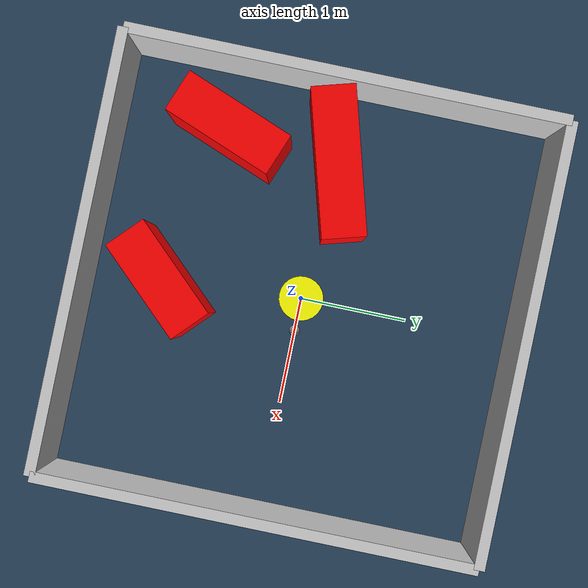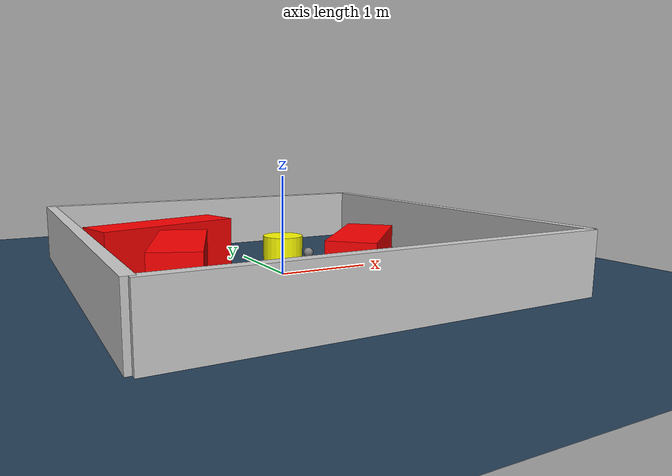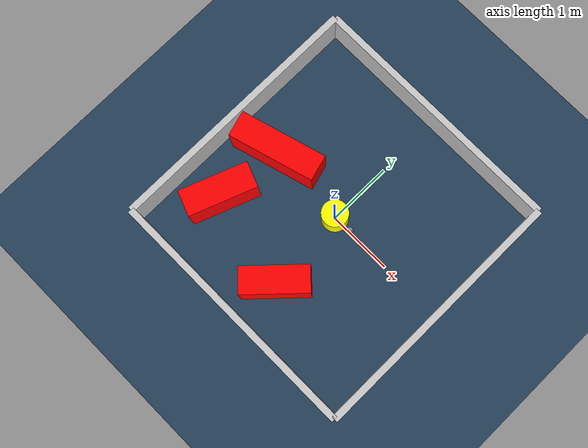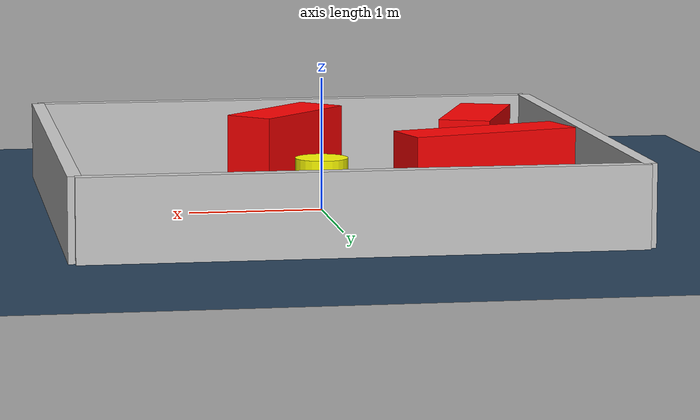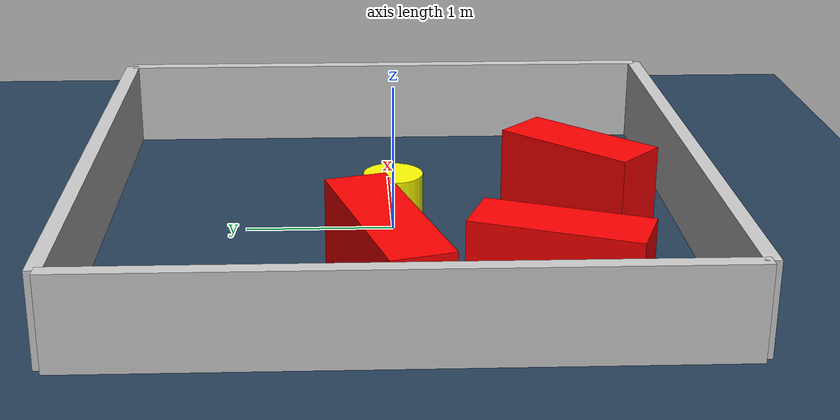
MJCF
<?xml version="1.0" ?>
<mujoco model="generated_environment">
  <option timestep="0.01" integrator="RK4" cone="elliptic"/>
  <default>
    <geom density="1"/>
  </default>
  <asset>
    <texture builtin="gradient" height="3072" rgb1="0.3 0.5 0.7" rgb2="0 0 0" type="skybox" width="512"/>
    <texture builtin="checker" height="300" mark="edge" markrgb="0.8 0.8 0.8" name="groundplane" rgb1="0.2 0.3 0.4" rgb2="0.1 0.2 0.3" type="2d" width="300"/>
    <material name="groundplane" reflectance="0.2" texrepeat="5 5" texture="groundplane" texuniform="true"/>
    <material name="robot" rgba="0.0 1.0 0.0 1"/>
  </asset>
  <worldbody>
    <light dir="0 0 -1" directional="true" pos="0 0 1.5"/>
    <geom condim="4" friction="1.0 0.005 0.001" material="groundplane" name="floor" size="0 0 0.05" type="plane"/>
    <body name="walls">
      <geom name="wall_1" condim="4" pos="-2.0 0.0 0.3" rgba="0.800000011920929 0.800000011920929 0.800000011920929 1.0" size="0.05 2.0 0.3" type="box"/>
      <geom name="wall_2" condim="4" pos="2.0 0.0 0.3" rgba="0.800000011920929 0.800000011920929 0.800000011920929 1.0" size="0.05 2.0 0.3" type="box"/>
      <geom name="wall_3" condim="4" pos="0.0 -2.0 0.3" rgba="0.800000011920929 0.800000011920929 0.800000011920929 1.0" size="2.0 0.05 0.3" type="box"/>
      <geom name="wall_4" condim="4" pos="0.0 2.0 0.3" rgba="0.800000011920929 0.800000011920929 0.800000011920929 1.0" size="2.0 0.05 0.3" type="box"/>
    </body>
    <body name="robot">
      <joint name="joint_x" type="slide" pos="0 0 0" axis="1 0 0"/>
      <joint name="joint_y" type="slide" pos="0 0 0" axis="0 1 0"/>
      <geom name="robot" type="sphere" pos="0.3 0.0 0.2" size="0.05" mass="5." friction="1.0 0.005 0.0001" condim="4" rgba="0.5 0.5 0.5 1.0"/>
      <site name="sensor_ball"/>
    </body>
    <body name="obstacle_movable_1">
      <geom name="obstacle_movable_1" condim="4" pos="0.0 0.0 0.2" euler="0 0 0.0" friction="1.0 0.005 0.001" rgba="1.0 1.0 0.0 1.0" size="0.2 0.2 0.0" type="cylinder" mass="0.1"/>
      <joint type="free"/>
    </body>
    <body name="obstacle_2_static">
      <geom name="obstacle_2_static" condim="4" pos="0.09318419368199216 -1.262623058234635 0.3" euler="0 0 226.48731539019116" friction="1.0 0.005 0.001" rgba="1 0 0 1" size="0.4990669009121591 0.2 0.3" type="box"/>
    </body>
    <body name="obstacle_3_static">
      <geom name="obstacle_3_static" condim="4" pos="-1.370340253769334 -0.9361006171538686 0.3" euler="0 0 248.9481305921247" friction="1.0 0.005 0.001" rgba="1 0 0 1" size="0.5241927637790451 0.2 0.3" type="box"/>
    </body>
    <body name="obstacle_4_static">
      <geom name="obstacle_4_static" condim="4" pos="-1.235072375032933 0.07782796633870204 0.3" euler="0 0 15.905929225382081" friction="1.0 0.005 0.001" rgba="1 0 0 1" size="0.6689092315464353 0.2 0.3" type="box"/>
    </body>
  </worldbody>
  <actuator>
    <motor name="actuator_x" joint="joint_x" gear="1" ctrlrange="-1 1"/>
    <motor name="actuator_y" joint="joint_y" gear="1" ctrlrange="-1 1"/>
  </actuator>
</mujoco>
